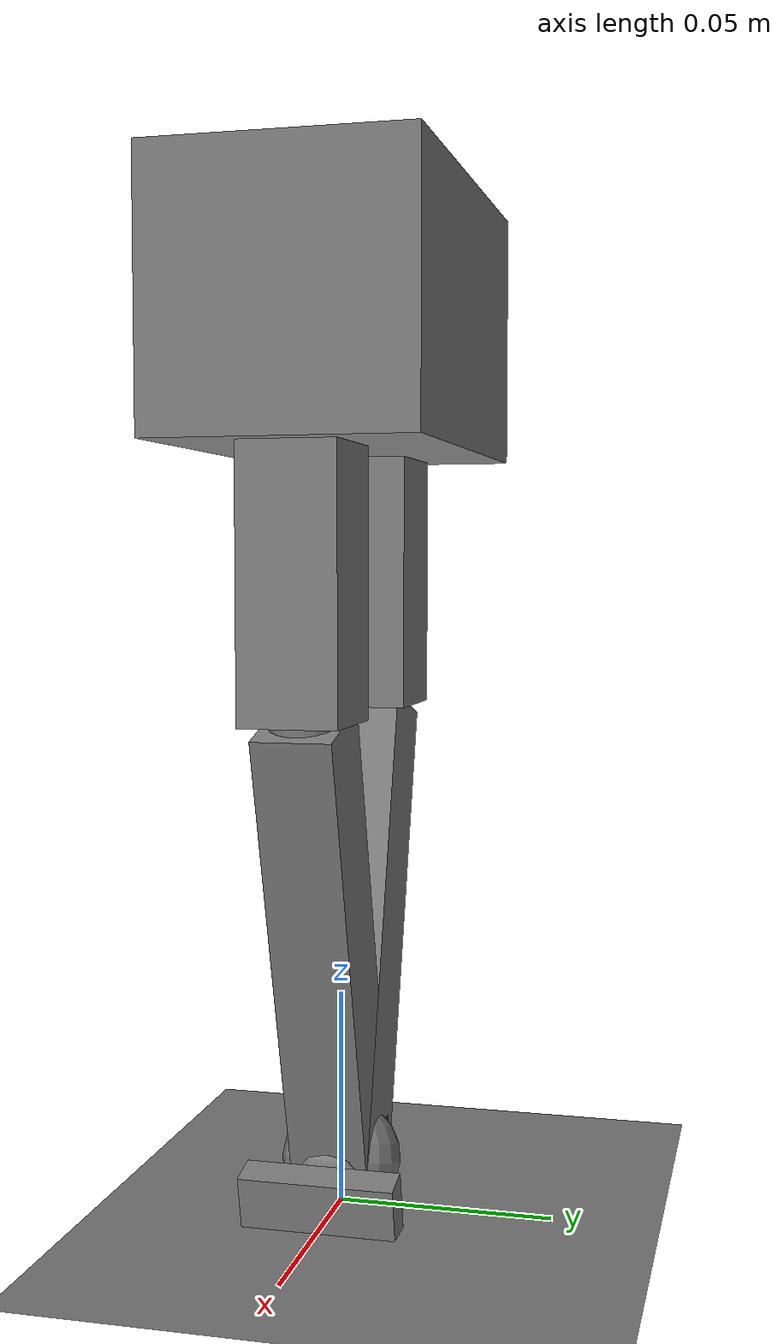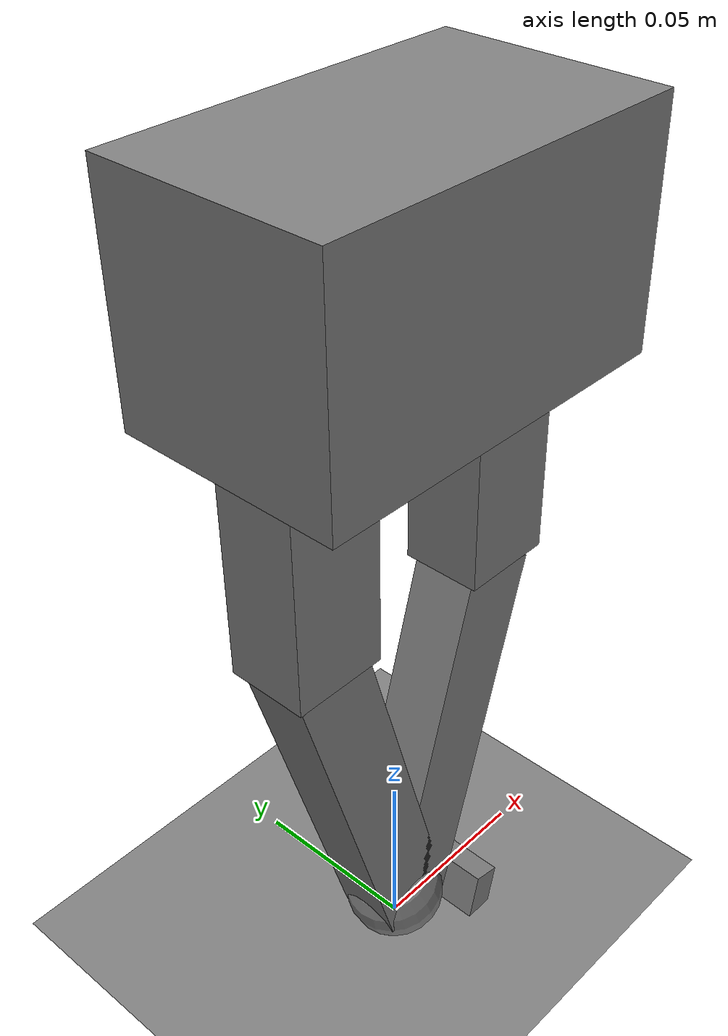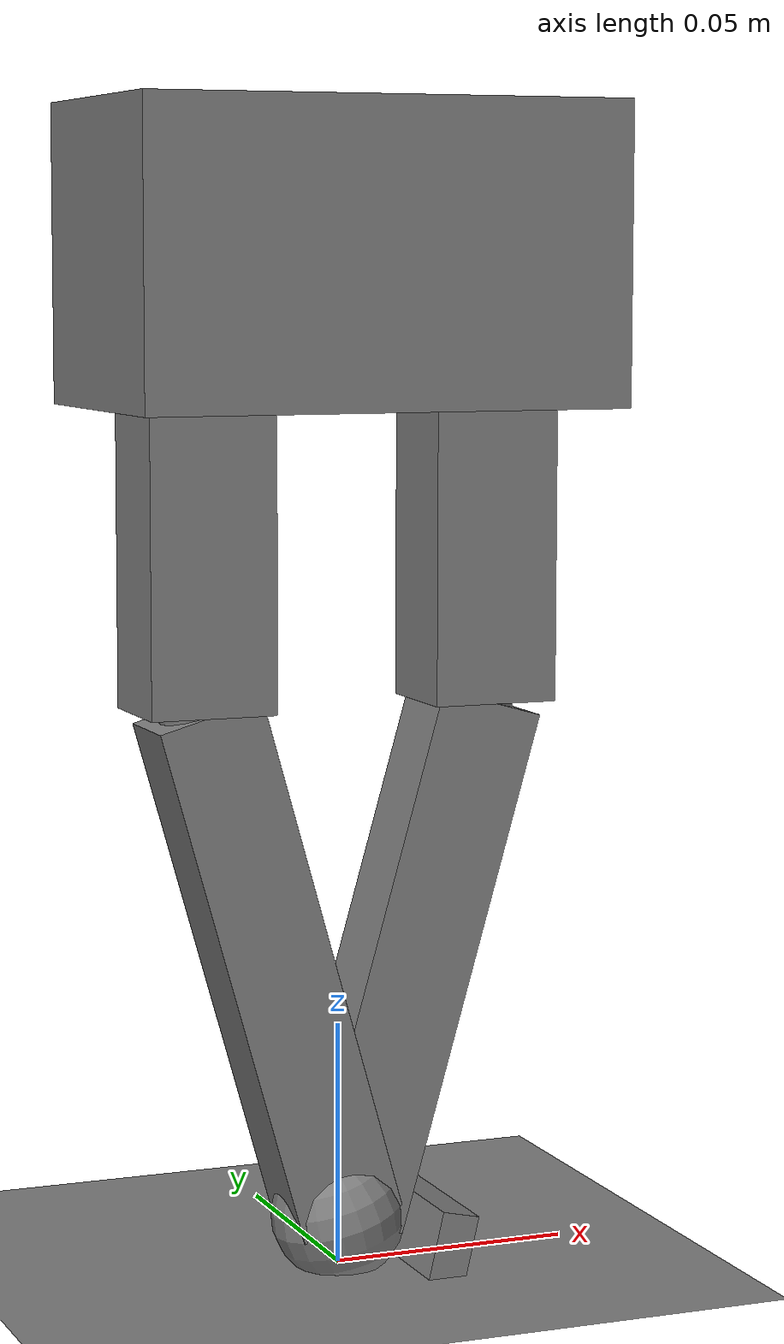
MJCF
<mujoco model="fivebar_leg">
  <compiler angle="radian" autolimits="false"/>

  <option timestep="0.002" iterations="40" tolerance="1e-10"
          cone="elliptic" integrator="Euler" gravity="0 0 -9.81"/>

  <default>
    <geom type="box" condim="3"/>
    <joint limited="true" damping="0.02"/>
    <motor ctrlrange="-30 30" ctrllimited="true" forcerange="-30 30" forcelimited="true"/>
  </default>

  <worldbody>
    <geom name="floor" type="plane" size="2 2 1" pos="0 0 0" condim="3"/>

    <!-- base: shares one leg's worth of torso (approx half body on one leg) -->
    <body name="base" pos="0 0 0.226">
      <freejoint name="root"/>
      <inertial pos="0 0 -0.02" mass="1.35" diaginertia="0.02 0.02 0.02"/>
      <geom name="base_geom" type="box" size="0.05 0.03 0.03" pos="0 0 -0.02" contype="0" conaffinity="0"/>
      <site name="s_base" pos="0 0 -0.02"/>

      <!-- hip: motor stators + frame for one leg -->
      <body name="hip" pos="0 0 -0.02">
        <inertial pos="0 0 0" mass="0.15" diaginertia="0.0002 0.0002 0.0002"/>
        <geom name="hip_geom" type="cylinder" size="0.024 0.018" pos="0 0 0" zaxis="0 1 0" contype="0" conaffinity="0"/>

        <!-- mount 1 (x = -a/2). rotor + spring-loaded input link, coaxial about y -->
        <body name="rot1" pos="-0.03 0 0">
          <joint name="r1" axis="0 1 0" range="-1.2 1.2" armature="0.003"/>
          <geom name="rot1_geom" type="cylinder" size="0.014 0.01" pos="0 0 0" zaxis="0 1 0" mass="0.03" contype="0" conaffinity="0"/>
        </body>
        <body name="lka" pos="-0.03 0 0">
          <joint name="j1" axis="0 1 0" range="-1.2 1.2" damping="0.05"/>
          <geom name="lka_geom" type="box" size="0.013 0.011 0.045" pos="0 0 -0.045" mass="0.045" contype="0" conaffinity="0"/>
          <body name="endA" pos="0 0 -0.09">
            <geom name="endA_geom" type="sphere" size="0.008" mass="0.004" contype="0" conaffinity="0"/>
            <body name="C1" pos="0 0 0" euler="0 -0.2761 0">
              <joint name="jc1" axis="0 1 0" range="-1.12 0.9" damping="0.005" armature="0.0002"/>
              <geom name="C1_geom" type="box" size="0.011 0.009 0.055" pos="0 0 -0.055" mass="0.035" contype="0" conaffinity="0"/>
              <body name="tipC1" pos="0 0 -0.11">
                <geom name="foot_pad" type="sphere" size="0.014" mass="0.02" friction="1.2 0.02 0.0001" condim="3"/>
                <geom name="pad_cleat" type="box" size="0.004 0.018 0.008" pos="0.016 0 -0.010"
                      euler="0 0.5 0" mass="0.008" friction="1.2 0.02 0.0001" condim="3"/>
                <site name="s_foot" pos="0 0 0"/>
              </body>
            </body>
          </body>
        </body>

        <!-- mount 2 (x = +a/2), mirrored -->
        <body name="rot2" pos="0.03 0 0">
          <joint name="r2" axis="0 1 0" range="-1.2 1.2" armature="0.003"/>
          <geom name="rot2_geom" type="cylinder" size="0.014 0.01" pos="0 0 0" zaxis="0 1 0" mass="0.03" contype="0" conaffinity="0"/>
        </body>
        <body name="lkb" pos="0.03 0 0">
          <joint name="j2" axis="0 1 0" range="-1.2 1.2" damping="0.05"/>
          <geom name="lkb_geom" type="box" size="0.013 0.011 0.045" pos="0 0 -0.045" mass="0.045" contype="0" conaffinity="0"/>
          <body name="endB" pos="0 0 -0.09">
            <geom name="endB_geom" type="sphere" size="0.008" mass="0.004" contype="0" conaffinity="0"/>
            <body name="C2" pos="0 0 0" euler="0 0.2761 0">
              <joint name="jc2" axis="0 1 0" range="-0.58 1.4" damping="0.005" armature="0.0002"/>
              <geom name="C2_geom" type="box" size="0.011 0.009 0.055" pos="0 0 -0.055" mass="0.035" contype="0" conaffinity="0"/>
              <body name="tipC2" pos="0 0 -0.11">
                <geom name="tipC2_geom" type="sphere" size="0.006" mass="0.003" contype="0" conaffinity="0"/>
              </body>
            </body>
          </body>
        </body>
      </body>
    </body>
  </worldbody>

  <!-- series-elastic element per input: fixed tendon couples rotor joint (q_r) and
       link joint (q_j); tension = k*(q_r - q_j), torque pair equal-and-opposite -->
  <tendon>
    <fixed name="spring1" stiffness="40" damping="0.3">
      <joint joint="r1" coef="1"/>
      <joint joint="j1" coef="-1"/>
    </fixed>
    <fixed name="spring2" stiffness="40" damping="0.3">
      <joint joint="r2" coef="1"/>
      <joint joint="j2" coef="-1"/>
    </fixed>
  </tendon>

  <actuator>
    <motor name="m1" joint="r1"/>
    <motor name="m2" joint="r2"/>
  </actuator>

  <sensor>
    <jointpos name="sp_r1" joint="r1"/>
    <jointpos name="sp_j1" joint="j1"/>
    <jointpos name="sp_r2" joint="r2"/>
    <jointpos name="sp_j2" joint="j2"/>
    <jointpos name="sp_jc1" joint="jc1"/>
    <jointpos name="sp_jc2" joint="jc2"/>
    <jointvel name="sv_r1" joint="r1"/>
    <jointvel name="sv_j1" joint="j1"/>
    <jointvel name="sv_r2" joint="r2"/>
    <jointvel name="sv_j2" joint="j2"/>
    <framepos name="foot_pos" objtype="site" objname="s_foot"/>
    <framequat name="base_quat" objtype="body" objname="base"/>
    <framelinvel name="base_lvel" objtype="body" objname="base"/>
    <framelinacc name="base_lacc" objtype="body" objname="base"/>
    <gyro name="gyro" site="s_base"/>
    <accelerometer name="acc" site="s_base"/>
    <actuatorfrc name="am1" actuator="m1"/>
    <actuatorfrc name="am2" actuator="m2"/>
  </sensor>

  <!-- close the five-bar loop: keep both coupler tips coincident at the foot -->
  <equality>
    <weld body1="tipC1" body2="tipC2" solref="0.001 1" solimp="0.9 0.95 0.001"/>
  </equality>
</mujoco>
